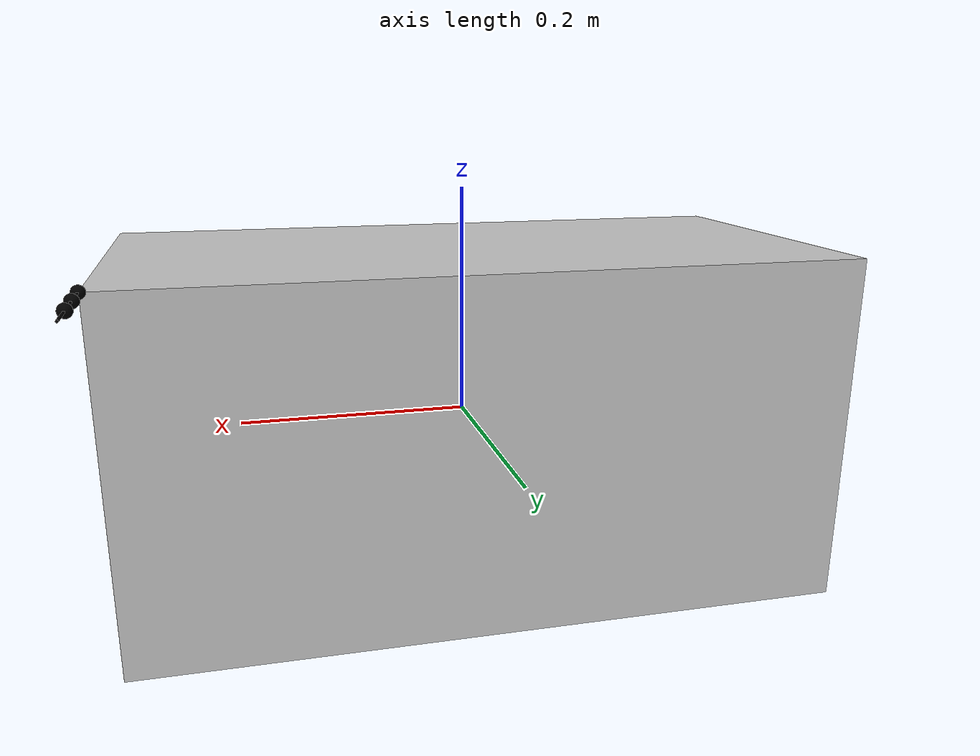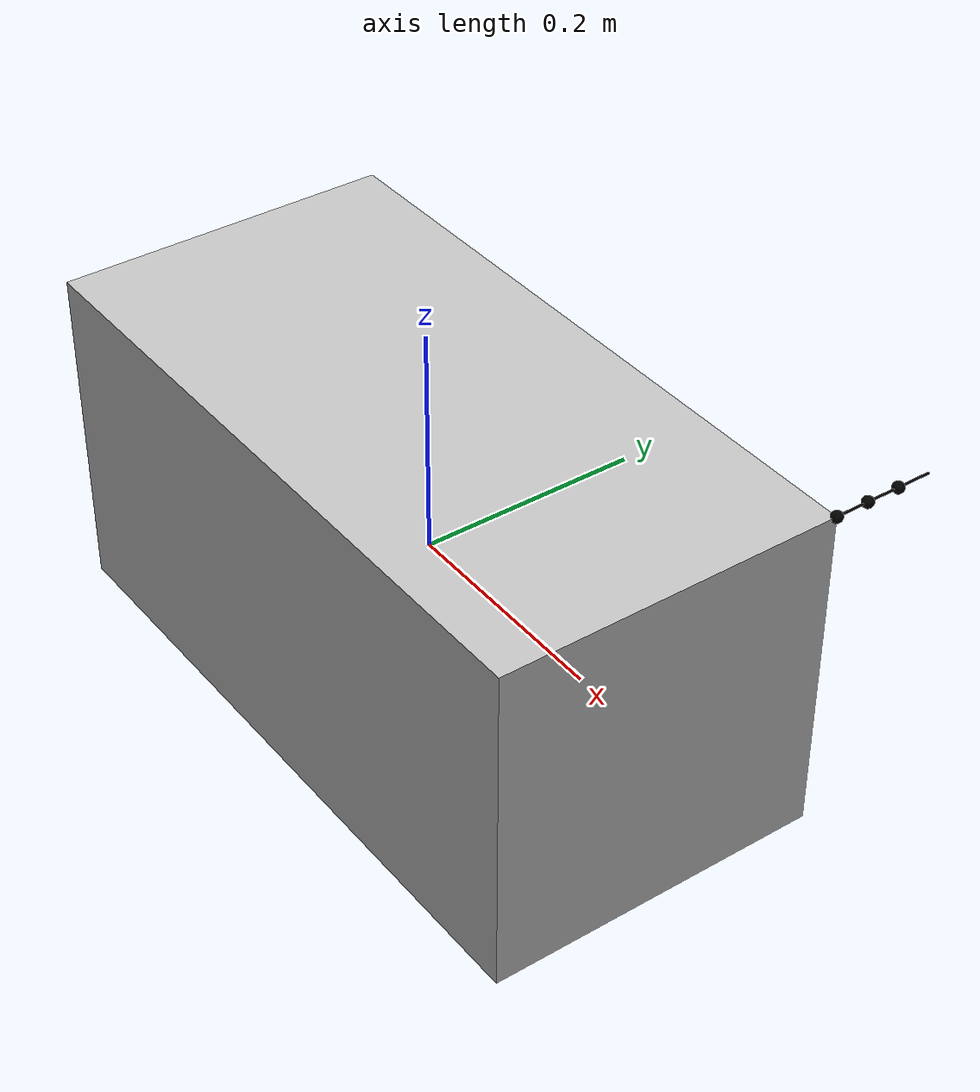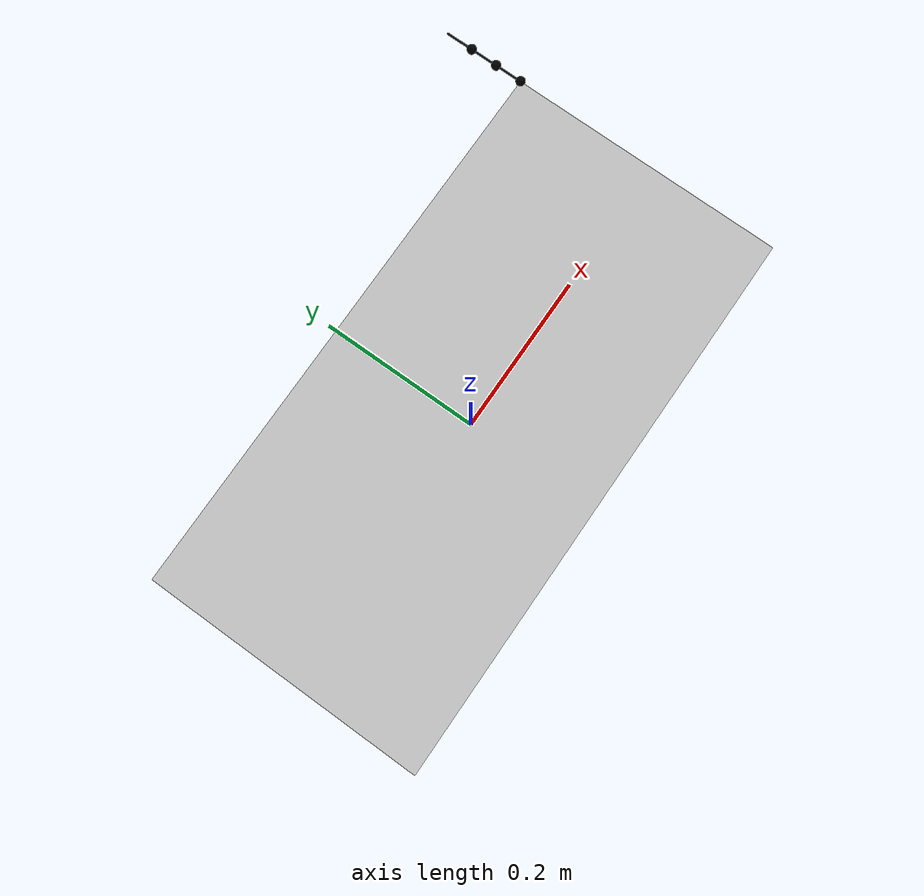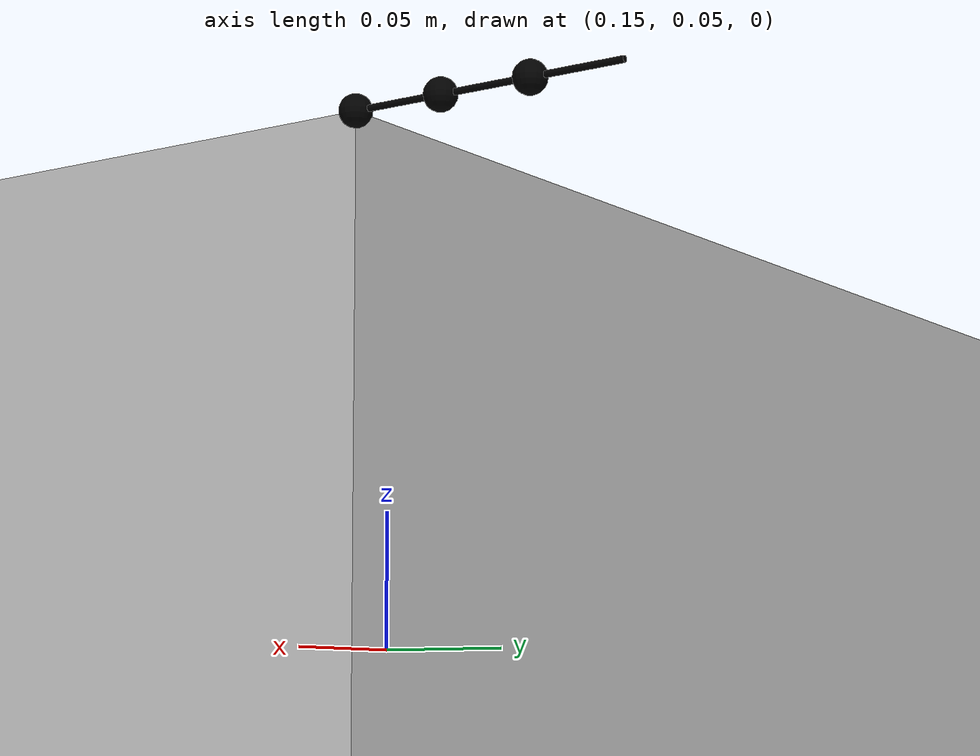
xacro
<?xml version="1.0"?>
<robot name="tortoisebot" xmlns:xacro="http://ros.org/wiki/xacro">

  <xacro:macro name="cylinder_model" params="name parent child">
    <link name="${name}_junta1">
      <inertial>
        <mass value="0.025" />
        <inertia ixx="5.8083e-4" ixy="0" ixz="0" iyy="3.0833e-5" iyz="0" izz="5.9083e-4" />
      </inertial>
    </link>
    <link name="${name}_junta2">
      <inertial>
        <mass value="0.025" />
        <inertia ixx="5.8083e-4" ixy="0" ixz="0" iyy="3.0833e-5" iyz="0" izz="5.9083e-4" />
      </inertial>
    </link>
    <link name="${name}_junta3">
      <inertial>
        <mass value="0.025" />
        <inertia ixx="5.8083e-4" ixy="0" ixz="0" iyy="3.0833e-5" iyz="0" izz="5.9083e-4" />
      </inertial>
    </link>
    <joint name="${name}_joint" type="continuous">
      <parent link="${parent}"/>
      <child link="${name}_junta1"/>
      <axis xyz="0 1 0" />
    </joint>
    <joint name="${name}_joint2" type="continuous">
      <parent link="${name}_junta1"/>
      <child link="${name}_junta2"/>
      <axis xyz="0 0 1" />
    </joint>
    <joint name="${name}_joint3" type="continuous">
      <parent link="${name}_junta2"/>
      <child link="${name}_junta3"/>
      <axis xyz="1 0 0" />
    </joint>
  <joint name="${name}_jointfixed" type="fixed">
      <parent link="${name}_junta3"/>
      <child link="${child}"/>
      <origin rpy="1.57 0 0" xyz="0 0.015 0"/>
    </joint>
  </xacro:macro>

  <link name="base_link">
    <visual>
      <geometry>
        <box size="0.6 0.3 0.3"/>
      </geometry>
      <material name="silver">
        <color rgba="0.75 0.75 0.75 1"/>
      </material>
    </visual>
    <collision>
      <geometry>
        <box size="0.6 0.3 0.3"/>
      </geometry>
    </collision>
    <inertial>
      <mass value="1.0"/>
      <inertia ixx="0.015" iyy="0.0375" izz="0.0375" ixy="0" ixz="0" iyz="0"/>
    </inertial>
  </link>

  <link name="link_0">
    <visual>
      <geometry>
        <sphere radius="0.005"/>
      </geometry>
      <material name="black">
        <color rgba="0 0 0 1"/>
      </material>
    </visual>
    <collision>
      <geometry>
        <sphere radius="0.005"/>
      </geometry>
    </collision>
    <inertial>
      <mass value="0.001"/>
      <inertia ixx="0.00125" iyy="0.00125" izz="0.00125" ixy="0" ixz="0" iyz="0"/>
    </inertial>
  </link>

  <link name="link_2">
    <visual>
      <geometry>
        <sphere radius="0.005"/>
      </geometry>
      <material name="black">
        <color rgba="0 0 0 1"/>
      </material>
    </visual>
    <collision>
      <geometry>
        <sphere radius="0.005"/>
      </geometry>
    </collision>
    <inertial>
      <mass value="0.001"/>
      <inertia ixx="0.00125" iyy="0.00125" izz="0.00125" ixy="0" ixz="0" iyz="0"/>
    </inertial>
  </link>

  <link name="link_4">
    <visual>
      <geometry>
        <sphere radius="0.005"/>
      </geometry>
      <material name="black">
        <color rgba="0 0 0 1"/>
      </material>
    </visual>
    <collision>
      <geometry>
        <sphere radius="0.005"/>
      </geometry>
    </collision>
    <inertial>
      <mass value="0.001"/>
      <inertia ixx="0.00125" iyy="0.00125" izz="0.00125" ixy="0" ixz="0" iyz="0"/>
    </inertial>
  </link>

  <link name="link_1">
    <visual>
      <geometry>
        <cylinder length="0.03" radius="0.001"/>
      </geometry>
      <material name="black">
        <color rgba="0 0 0 1"/>
      </material>
    </visual>
    <collision>
      <geometry>
        <cylinder length="0.03" radius="0.005"/>
      </geometry>
    </collision>
    <inertial>
      <mass value="0.002"/>
      <inertia ixx="0.0750625" iyy="0.0765625" izz="0.000125" ixy="0" ixz="0" iyz="0"/>
    </inertial>
  </link>

  <link name="link_3">
    <visual>
      <geometry>
        <cylinder length="0.03" radius="0.001"/>
      </geometry>
      <material name="black">
        <color rgba="0 0 0 1"/>
      </material>
    </visual>
    <collision>
      <geometry>
        <cylinder length="0.03" radius="0.005"/>
      </geometry>
    </collision>
    <inertial>
      <mass value="0.002"/>
      <inertia ixx="0.0750625" iyy="0.0765625" izz="0.000125" ixy="0" ixz="0" iyz="0"/>
    </inertial>
  </link>

  <link name="link_5">
    <visual>
      <geometry>
        <cylinder length="0.03" radius="0.001"/>
      </geometry>
      <material name="black">
        <color rgba="0 0 0 1"/>
      </material>
    </visual>
    <collision>
      <geometry>
        <cylinder length="0.03" radius="0.005"/>
      </geometry>
    </collision>
    <inertial>
      <mass value="0.002"/>
      <inertia ixx="0.0750625" iyy="0.0765625" izz="0.000125" ixy="0" ixz="0" iyz="0"/>
    </inertial>
  </link>

  <xacro:cylinder_model name="link_1" parent="link_0" child="link_1"> </xacro:cylinder_model>
  <xacro:cylinder_model name="link_3" parent="link_2" child="link_3"> </xacro:cylinder_model>
  <xacro:cylinder_model name="link_5" parent="link_4" child="link_5"> </xacro:cylinder_model>
  <joint name="link_0" type="fixed">
      <parent link="base_link"/>
      <child link="link_0"/>
      <origin rpy="0 0 0" xyz="0.3 0.15 0.15"/>
  </joint>
  <joint name="link_2" type="fixed">
    <parent link="link_1"/>
    <child link="link_2"/>
    <origin rpy="-1.57 0 0" xyz="0 0 -0.015"/>
  </joint>
  <joint name="link_4" type="fixed">
    <parent link="link_3"/>
    <child link="link_4"/>
    <origin rpy="-1.57 0 0" xyz="0 0 -0.015"/>
  </joint>

</robot>
